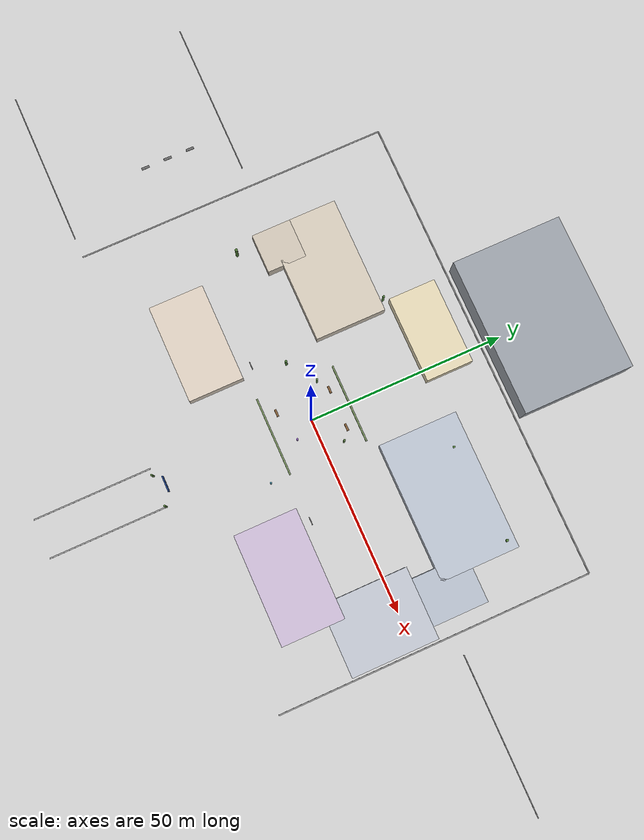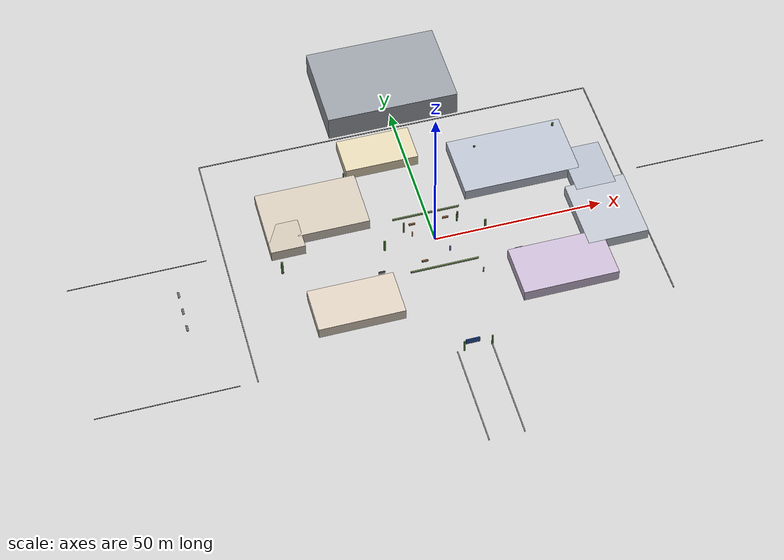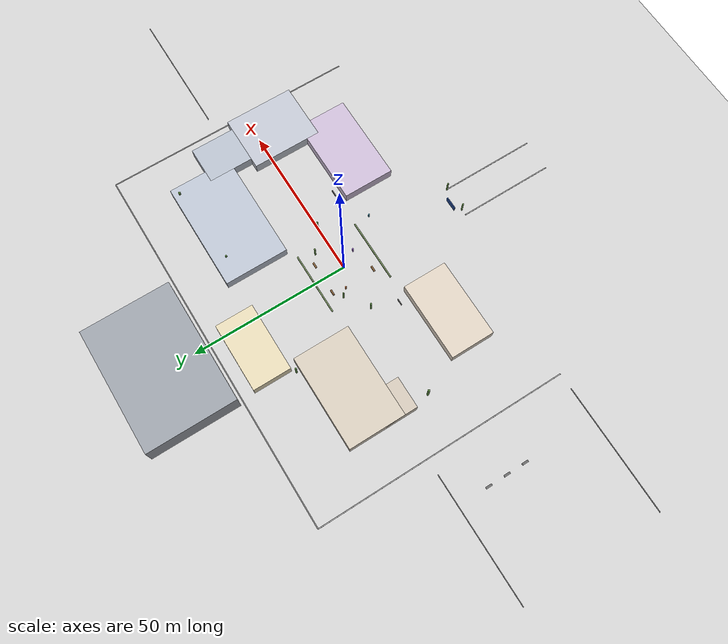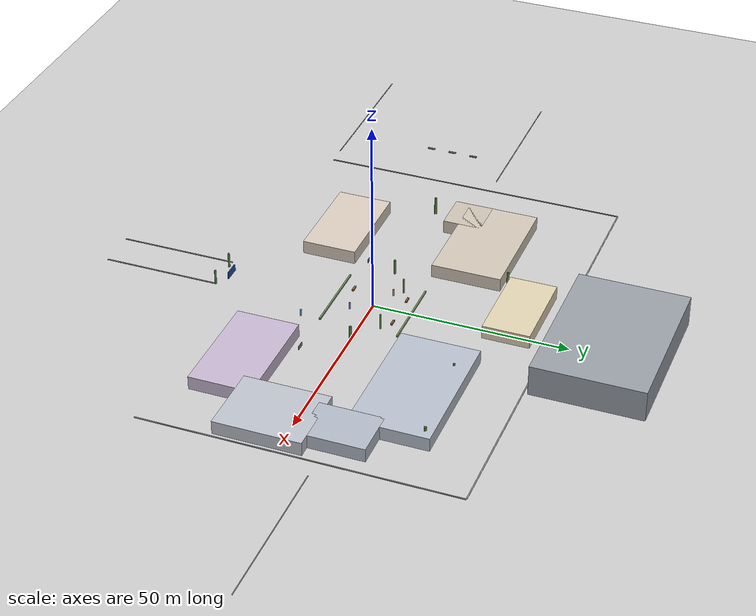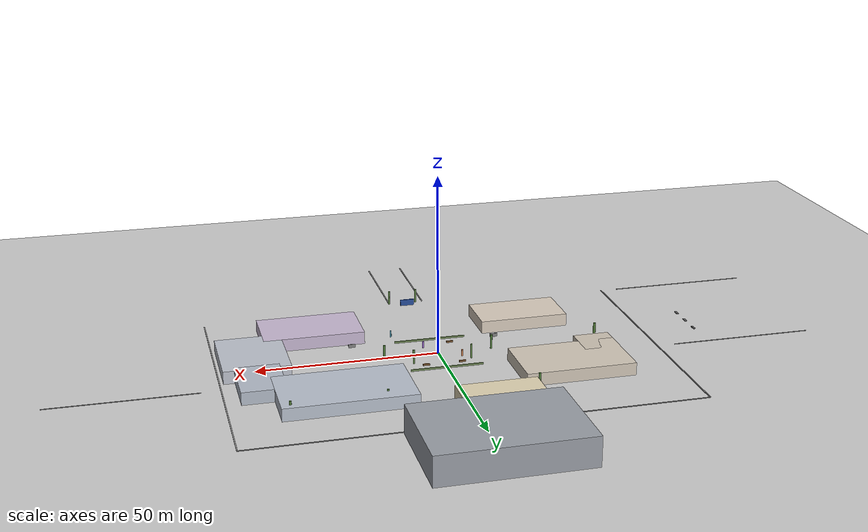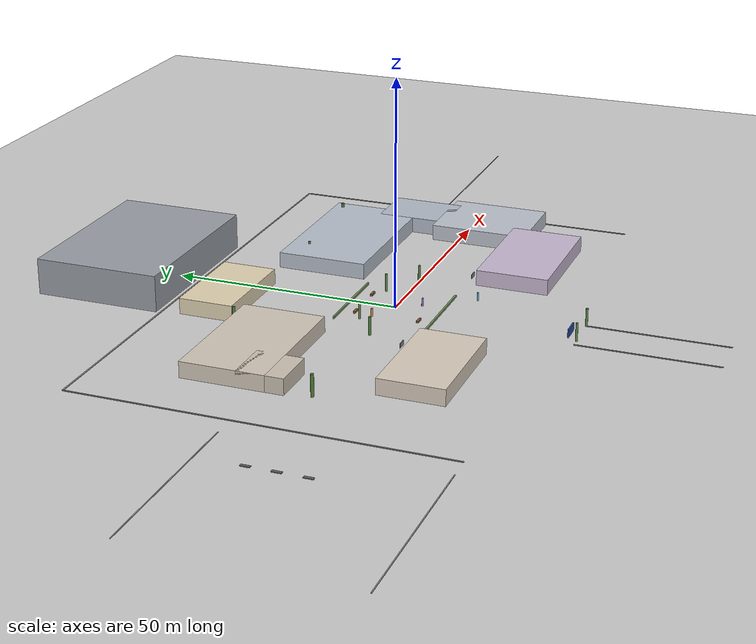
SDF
<?xml version="1.0"?>
<sdf version="1.6">
  <world name="folsom_lake_college">

    <physics type="ode">
      <max_step_size>0.001</max_step_size>
      <real_time_factor>1.0</real_time_factor>
      <real_time_update_rate>1000</real_time_update_rate>
    </physics>

    <include><uri>model://sun</uri></include>
    <include><uri>model://ground_plane</uri></include>

    <!-- South perimeter road / main entrance corridor -->
    <!-- Entry road: 8m wide, runs N-S at x=0 from y=-70 to quad -->
    <!-- Curb east side of entry road -->
    <model name="curb_entry_east">
      <static>true</static>
      <pose>5 -55 0.075 0 0 0</pose>
      <link name="link">
        <collision name="col"><geometry><box><size>0.3 30 0.15</size></box></geometry></collision>
        <visual name="vis">
          <geometry><box><size>0.3 30 0.15</size></box></geometry>
          <material><ambient>0.6 0.6 0.6 1</ambient><diffuse>0.6 0.6 0.6 1</diffuse></material>
        </visual>
      </link>
    </model>

    <!-- Curb west side of entry road -->
    <model name="curb_entry_west">
      <static>true</static>
      <pose>-5 -55 0.075 0 0 0</pose>
      <link name="link">
        <collision name="col"><geometry><box><size>0.3 30 0.15</size></box></geometry></collision>
        <visual name="vis">
          <geometry><box><size>0.3 30 0.15</size></box></geometry>
          <material><ambient>0.6 0.6 0.6 1</ambient><diffuse>0.6 0.6 0.6 1</diffuse></material>
        </visual>
      </link>
    </model>

    <!-- Campus loop road — north section -->
    <model name="road_north_curb_south">
      <static>true</static>
      <pose>0 45 0.075 0 0 0</pose>
      <link name="link">
        <collision name="col"><geometry><box><size>120 0.3 0.15</size></box></geometry></collision>
        <visual name="vis">
          <geometry><box><size>120 0.3 0.15</size></box></geometry>
          <material><ambient>0.55 0.55 0.55 1</ambient><diffuse>0.55 0.55 0.55 1</diffuse></material>
        </visual>
      </link>
    </model>

    <!-- East campus loop road -->
    <model name="road_east_curb">
      <static>true</static>
      <pose>60 5 0.075 0 0 0</pose>
      <link name="link">
        <collision name="col"><geometry><box><size>0.3 80 0.15</size></box></geometry></collision>
        <visual name="vis">
          <geometry><box><size>0.3 80 0.15</size></box></geometry>
          <material><ambient>0.55 0.55 0.55 1</ambient><diffuse>0.55 0.55 0.55 1</diffuse></material>
        </visual>
      </link>
    </model>

    <!-- West campus loop road -->
    <model name="road_west_curb">
      <static>true</static>
      <pose>-60 5 0.075 0 0 0</pose>
      <link name="link">
        <collision name="col"><geometry><box><size>0.3 80 0.15</size></box></geometry></collision>
        <visual name="vis">
          <geometry><box><size>0.3 80 0.15</size></box></geometry>
          <material><ambient>0.55 0.55 0.55 1</ambient><diffuse>0.55 0.55 0.55 1</diffuse></material>
        </visual>
      </link>
    </model>

    <!-- LIBRARY  —  NW of quad, ~30m × 18m -->
    <model name="library">
      <static>true</static>
      <pose>-32 18 1.75 0 0 0</pose>
      <link name="link">
        <collision name="col"><geometry><box><size>30 18 3.5</size></box></geometry></collision>
        <visual name="vis">
          <geometry><box><size>30 18 3.5</size></box></geometry>
          <material><ambient>0.82 0.78 0.72 1</ambient><diffuse>0.82 0.78 0.72 1</diffuse></material>
        </visual>
      </link>
    </model>

    <!-- Library wing (reading room extension) -->
    <model name="library_wing">
      <static>true</static>
      <pose>-42 10 1.75 0 0 0</pose>
      <link name="link">
        <collision name="col"><geometry><box><size>10 10 3.5</size></box></geometry></collision>
        <visual name="vis">
          <geometry><box><size>10 10 3.5</size></box></geometry>
          <material><ambient>0.80 0.76 0.70 1</ambient><diffuse>0.80 0.76 0.70 1</diffuse></material>
        </visual>
      </link>
    </model>

    <!-- SCIENCE & MATH  —  NE, ~35m × 20m -->
    <model name="science_math">
      <static>true</static>
      <pose>30 22 1.75 0 0 0</pose>
      <link name="link">
        <collision name="col"><geometry><box><size>35 20 3.5</size></box></geometry></collision>
        <visual name="vis">
          <geometry><box><size>35 20 3.5</size></box></geometry>
          <material><ambient>0.72 0.75 0.80 1</ambient><diffuse>0.72 0.75 0.80 1</diffuse></material>
        </visual>
      </link>
    </model>

    <!-- Science lab annex -->
    <model name="science_annex">
      <static>true</static>
      <pose>50 12 1.75 0 0 0</pose>
      <link name="link">
        <collision name="col"><geometry><box><size>12 16 3.5</size></box></geometry></collision>
        <visual name="vis">
          <geometry><box><size>12 16 3.5</size></box></geometry>
          <material><ambient>0.70 0.73 0.78 1</ambient><diffuse>0.70 0.73 0.78 1</diffuse></material>
        </visual>
      </link>
    </model>

    <!-- STUDENT SERVICES / ADMIN  —  SW, ~25m × 14m -->
    <model name="student_services">
      <static>true</static>
      <pose>-28 -18 1.75 0 0 0</pose>
      <link name="link">
        <collision name="col"><geometry><box><size>25 14 3.5</size></box></geometry></collision>
        <visual name="vis">
          <geometry><box><size>25 14 3.5</size></box></geometry>
          <material><ambient>0.85 0.80 0.74 1</ambient><diffuse>0.85 0.80 0.74 1</diffuse></material>
        </visual>
      </link>
    </model>

    <!-- ARTS & HUMANITIES  —  SE, ~28m × 16m -->
    <model name="arts_humanities">
      <static>true</static>
      <pose>32 -20 1.75 0 0 0</pose>
      <link name="link">
        <collision name="col"><geometry><box><size>28 16 3.5</size></box></geometry></collision>
        <visual name="vis">
          <geometry><box><size>28 16 3.5</size></box></geometry>
          <material><ambient>0.78 0.72 0.82 1</ambient><diffuse>0.78 0.72 0.82 1</diffuse></material>
        </visual>
      </link>
    </model>

    <!-- GYMNASIUM / PE  —  Far north, ~40m × 28m, taller -->
    <model name="gymnasium">
      <static>true</static>
      <pose>0 60 4.0 0 0 0</pose>
      <link name="link">
        <collision name="col"><geometry><box><size>40 28 8.0</size></box></geometry></collision>
        <visual name="vis">
          <geometry><box><size>40 28 8.0</size></box></geometry>
          <material><ambient>0.60 0.62 0.65 1</ambient><diffuse>0.60 0.62 0.65 1</diffuse></material>
        </visual>
      </link>
    </model>

    <!-- CAFETERIA / STUDENT CENTER  —  North of quad -->
    <model name="cafeteria">
      <static>true</static>
      <pose>-8 35 1.75 0 0 0</pose>
      <link name="link">
        <collision name="col"><geometry><box><size>22 12 3.5</size></box></geometry></collision>
        <visual name="vis">
          <geometry><box><size>22 12 3.5</size></box></geometry>
          <material><ambient>0.88 0.83 0.70 1</ambient><diffuse>0.88 0.83 0.70 1</diffuse></material>
        </visual>
      </link>
    </model>

    <!-- TECHNOLOGY / CTE  —  East mid -->
    <model name="technology_cte">
      <static>true</static>
      <pose>50 -5 1.75 0 0 0</pose>
      <link name="link">
        <collision name="col"><geometry><box><size>18 22 3.5</size></box></geometry></collision>
        <visual name="vis">
          <geometry><box><size>18 22 3.5</size></box></geometry>
          <material><ambient>0.74 0.76 0.80 1</ambient><diffuse>0.74 0.76 0.80 1</diffuse></material>
        </visual>
      </link>
    </model>

    <!-- North planter -->
    <model name="quad_planter_north">
      <static>true</static>
      <pose>0 10 0.25 0 0 0</pose>
      <link name="link">
        <collision name="col"><geometry><box><size>20 0.4 0.5</size></box></geometry></collision>
        <visual name="vis">
          <geometry><box><size>20 0.4 0.5</size></box></geometry>
          <material><ambient>0.45 0.55 0.35 1</ambient><diffuse>0.45 0.55 0.35 1</diffuse></material>
        </visual>
      </link>
    </model>

    <!-- South planter -->
    <model name="quad_planter_south">
      <static>true</static>
      <pose>0 -10 0.25 0 0 0</pose>
      <link name="link">
        <collision name="col"><geometry><box><size>20 0.4 0.5</size></box></geometry></collision>
        <visual name="vis">
          <geometry><box><size>20 0.4 0.5</size></box></geometry>
          <material><ambient>0.45 0.55 0.35 1</ambient><diffuse>0.45 0.55 0.35 1</diffuse></material>
        </visual>
      </link>
    </model>

    <model name="tree_1"><static>true</static><pose>-8 5 2.0 0 0 0</pose>
      <link name="link">
        <collision name="col"><geometry><cylinder><radius>0.25</radius><length>4.0</length></cylinder></geometry></collision>
        <visual name="vis"><geometry><cylinder><radius>0.25</radius><length>4.0</length></cylinder></geometry>
          <material><ambient>0.35 0.5 0.25 1</ambient><diffuse>0.35 0.5 0.25 1</diffuse></material></visual>
      </link>
    </model>

    <model name="tree_2"><static>true</static><pose>8 5 2.0 0 0 0</pose>
      <link name="link">
        <collision name="col"><geometry><cylinder><radius>0.25</radius><length>4.0</length></cylinder></geometry></collision>
        <visual name="vis"><geometry><cylinder><radius>0.25</radius><length>4.0</length></cylinder></geometry>
          <material><ambient>0.35 0.5 0.25 1</ambient><diffuse>0.35 0.5 0.25 1</diffuse></material></visual>
      </link>
    </model>

    <model name="tree_3"><static>true</static><pose>-15 0 2.0 0 0 0</pose>
      <link name="link">
        <collision name="col"><geometry><cylinder><radius>0.3</radius><length>4.0</length></cylinder></geometry></collision>
        <visual name="vis"><geometry><cylinder><radius>0.3</radius><length>4.0</length></cylinder></geometry>
          <material><ambient>0.3 0.48 0.22 1</ambient><diffuse>0.3 0.48 0.22 1</diffuse></material></visual>
      </link>
    </model>

    <model name="tree_4"><static>true</static><pose>15 0 2.0 0 0 0</pose>
      <link name="link">
        <collision name="col"><geometry><cylinder><radius>0.3</radius><length>4.0</length></cylinder></geometry></collision>
        <visual name="vis"><geometry><cylinder><radius>0.3</radius><length>4.0</length></cylinder></geometry>
          <material><ambient>0.3 0.48 0.22 1</ambient><diffuse>0.3 0.48 0.22 1</diffuse></material></visual>
      </link>
    </model>

    <model name="tree_5"><static>true</static><pose>-20 28 2.0 0 0 0</pose>
      <link name="link">
        <collision name="col"><geometry><cylinder><radius>0.28</radius><length>4.0</length></cylinder></geometry></collision>
        <visual name="vis"><geometry><cylinder><radius>0.28</radius><length>4.0</length></cylinder></geometry>
          <material><ambient>0.32 0.50 0.24 1</ambient><diffuse>0.32 0.50 0.24 1</diffuse></material></visual>
      </link>
    </model>

    <model name="tree_6"><static>true</static><pose>20 28 2.0 0 0 0</pose>
      <link name="link">
        <collision name="col"><geometry><cylinder><radius>0.28</radius><length>4.0</length></cylinder></geometry></collision>
        <visual name="vis"><geometry><cylinder><radius>0.28</radius><length>4.0</length></cylinder></geometry>
          <material><ambient>0.32 0.50 0.24 1</ambient><diffuse>0.32 0.50 0.24 1</diffuse></material></visual>
      </link>
    </model>

    <model name="tree_7"><static>true</static><pose>-45 0 2.0 0 0 0</pose>
      <link name="link">
        <collision name="col"><geometry><cylinder><radius>0.35</radius><length>5.0</length></cylinder></geometry></collision>
        <visual name="vis"><geometry><cylinder><radius>0.35</radius><length>5.0</length></cylinder></geometry>
          <material><ambient>0.30 0.46 0.20 1</ambient><diffuse>0.30 0.46 0.20 1</diffuse></material></visual>
      </link>
    </model>

    <model name="tree_8"><static>true</static><pose>45 30 2.0 0 0 0</pose>
      <link name="link">
        <collision name="col"><geometry><cylinder><radius>0.32</radius><length>5.0</length></cylinder></geometry></collision>
        <visual name="vis"><geometry><cylinder><radius>0.32</radius><length>5.0</length></cylinder></geometry>
          <material><ambient>0.30 0.46 0.20 1</ambient><diffuse>0.30 0.46 0.20 1</diffuse></material></visual>
      </link>
    </model>

    <model name="tree_9"><static>true</static><pose>-3 -40 2.0 0 0 0</pose>
      <link name="link">
        <collision name="col"><geometry><cylinder><radius>0.25</radius><length>4.0</length></cylinder></geometry></collision>
        <visual name="vis"><geometry><cylinder><radius>0.25</radius><length>4.0</length></cylinder></geometry>
          <material><ambient>0.35 0.5 0.25 1</ambient><diffuse>0.35 0.5 0.25 1</diffuse></material></visual>
      </link>
    </model>

    <model name="tree_10"><static>true</static><pose>5 -40 2.0 0 0 0</pose>
      <link name="link">
        <collision name="col"><geometry><cylinder><radius>0.25</radius><length>4.0</length></cylinder></geometry></collision>
        <visual name="vis"><geometry><cylinder><radius>0.25</radius><length>4.0</length></cylinder></geometry>
          <material><ambient>0.35 0.5 0.25 1</ambient><diffuse>0.35 0.5 0.25 1</diffuse></material></visual>
      </link>
    </model>

    <!-- ══════════════════════════════════════════════════════
         BENCHES & SIGNS  (small obstacles along pathways)
    ══════════════════════════════════════════════════════════ -->

    <!-- Bench near quad -->
    <model name="bench_1"><static>true</static><pose>-5 7 0.225 0 0 0</pose>
      <link name="link">
        <collision name="col"><geometry><box><size>1.8 0.5 0.45</size></box></geometry></collision>
        <visual name="vis"><geometry><box><size>1.8 0.5 0.45</size></box></geometry>
          <material><ambient>0.5 0.35 0.2 1</ambient><diffuse>0.5 0.35 0.2 1</diffuse></material></visual>
      </link>
    </model>

    <model name="bench_2"><static>true</static><pose>5 7 0.225 0 0 0</pose>
      <link name="link">
        <collision name="col"><geometry><box><size>1.8 0.5 0.45</size></box></geometry></collision>
        <visual name="vis"><geometry><box><size>1.8 0.5 0.45</size></box></geometry>
          <material><ambient>0.5 0.35 0.2 1</ambient><diffuse>0.5 0.35 0.2 1</diffuse></material></visual>
      </link>
    </model>

    <model name="bench_3"><static>true</static><pose>-5 -7 0.225 0 0 0</pose>
      <link name="link">
        <collision name="col"><geometry><box><size>1.8 0.5 0.45</size></box></geometry></collision>
        <visual name="vis"><geometry><box><size>1.8 0.5 0.45</size></box></geometry>
          <material><ambient>0.5 0.35 0.2 1</ambient><diffuse>0.5 0.35 0.2 1</diffuse></material></visual>
      </link>
    </model>

    <!-- Campus sign at main entrance -->
    <model name="campus_sign"><static>true</static><pose>0 -38 0.9 0 0 0</pose>
      <link name="link">
        <collision name="col"><geometry><box><size>4.0 0.3 1.8</size></box></geometry></collision>
        <visual name="vis"><geometry><box><size>4.0 0.3 1.8</size></box></geometry>
          <material><ambient>0.15 0.3 0.6 1</ambient><diffuse>0.15 0.3 0.6 1</diffuse></material></visual>
      </link>
    </model>

    <!-- Bike racks (thin obstacles) -->
    <model name="bike_rack_1"><static>true</static><pose>-18 -8 0.5 0 0 0</pose>
      <link name="link">
        <collision name="col"><geometry><box><size>2.0 0.15 1.0</size></box></geometry></collision>
        <visual name="vis"><geometry><box><size>2.0 0.15 1.0</size></box></geometry>
          <material><ambient>0.5 0.5 0.5 1</ambient><diffuse>0.5 0.5 0.5 1</diffuse></material></visual>
      </link>
    </model>

    <model name="bike_rack_2"><static>true</static><pose>22 -10 0.5 0 0 0</pose>
      <link name="link">
        <collision name="col"><geometry><box><size>2.0 0.15 1.0</size></box></geometry></collision>
        <visual name="vis"><geometry><box><size>2.0 0.15 1.0</size></box></geometry>
          <material><ambient>0.5 0.5 0.5 1</ambient><diffuse>0.5 0.5 0.5 1</diffuse></material></visual>
      </link>
    </model>

    <!-- ══════════════════════════════════════════════════════
         PARKING LOTS  (low curbs only — interior is open for driving)
    ══════════════════════════════════════════════════════════ -->

    <!-- West parking lot boundary -->
    <model name="parking_west_north"><static>true</static><pose>-85 10 0.075 0 0 0</pose>
      <link name="link">
        <collision name="col"><geometry><box><size>40 0.2 0.15</size></box></geometry></collision>
        <visual name="vis"><geometry><box><size>40 0.2 0.15</size></box></geometry>
          <material><ambient>0.55 0.55 0.55 1</ambient><diffuse>0.55 0.55 0.55 1</diffuse></material></visual>
      </link>
    </model>

    <model name="parking_west_south"><static>true</static><pose>-85 -35 0.075 0 0 0</pose>
      <link name="link">
        <collision name="col"><geometry><box><size>40 0.2 0.15</size></box></geometry></collision>
        <visual name="vis"><geometry><box><size>40 0.2 0.15</size></box></geometry>
          <material><ambient>0.55 0.55 0.55 1</ambient><diffuse>0.55 0.55 0.55 1</diffuse></material></visual>
      </link>
    </model>

    <!-- Parking lot divider rows (car stop blocks) -->
    <model name="car_stop_1"><static>true</static><pose>-75 0 0.1 0 0 0</pose>
      <link name="link">
        <collision name="col"><geometry><box><size>0.6 2.0 0.2</size></box></geometry></collision>
        <visual name="vis"><geometry><box><size>0.6 2.0 0.2</size></box></geometry>
          <material><ambient>0.4 0.4 0.4 1</ambient><diffuse>0.4 0.4 0.4 1</diffuse></material></visual>
      </link>
    </model>

    <model name="car_stop_2"><static>true</static><pose>-75 -6 0.1 0 0 0</pose>
      <link name="link">
        <collision name="col"><geometry><box><size>0.6 2.0 0.2</size></box></geometry></collision>
        <visual name="vis"><geometry><box><size>0.6 2.0 0.2</size></box></geometry>
          <material><ambient>0.4 0.4 0.4 1</ambient><diffuse>0.4 0.4 0.4 1</diffuse></material></visual>
      </link>
    </model>

    <model name="car_stop_3"><static>true</static><pose>-75 -12 0.1 0 0 0</pose>
      <link name="link">
        <collision name="col"><geometry><box><size>0.6 2.0 0.2</size></box></geometry></collision>
        <visual name="vis"><geometry><box><size>0.6 2.0 0.2</size></box></geometry>
          <material><ambient>0.4 0.4 0.4 1</ambient><diffuse>0.4 0.4 0.4 1</diffuse></material></visual>
      </link>
    </model>

    <!-- East parking lot boundary -->
    <model name="parking_east_north"><static>true</static><pose>85 10 0.075 0 0 0</pose>
      <link name="link">
        <collision name="col"><geometry><box><size>40 0.2 0.15</size></box></geometry></collision>
        <visual name="vis"><geometry><box><size>40 0.2 0.15</size></box></geometry>
          <material><ambient>0.55 0.55 0.55 1</ambient><diffuse>0.55 0.55 0.55 1</diffuse></material></visual>
      </link>
    </model>

    <!-- ══════════════════════════════════════════════════════
         DYNAMIC OBSTACLES  —  students walking on campus
    ══════════════════════════════════════════════════════════ -->

    <model name="student_1">
      <static>false</static>
      <pose>3 -5 0.9 0 0 0</pose>
      <link name="link">
        <inertial><mass>65</mass><inertia><ixx>8</ixx><iyy>8</iyy><izz>1.5</izz></inertia></inertial>
        <collision name="col"><geometry><cylinder><radius>0.22</radius><length>1.8</length></cylinder></geometry></collision>
        <visual name="vis"><geometry><cylinder><radius>0.22</radius><length>1.8</length></cylinder></geometry>
          <material><ambient>0.6 0.4 0.8 1</ambient><diffuse>0.6 0.4 0.8 1</diffuse></material></visual>
      </link>
    </model>

    <model name="student_2">
      <static>false</static>
      <pose>-6 3 0.9 0 0 0</pose>
      <link name="link">
        <inertial><mass>70</mass><inertia><ixx>9</ixx><iyy>9</iyy><izz>1.8</izz></inertia></inertial>
        <collision name="col"><geometry><cylinder><radius>0.22</radius><length>1.8</length></cylinder></geometry></collision>
        <visual name="vis"><geometry><cylinder><radius>0.22</radius><length>1.8</length></cylinder></geometry>
          <material><ambient>0.8 0.5 0.3 1</ambient><diffuse>0.8 0.5 0.3 1</diffuse></material></visual>
      </link>
    </model>

    <model name="student_3">
      <static>false</static>
      <pose>10 -15 0.9 0 0 0</pose>
      <link name="link">
        <inertial><mass>60</mass><inertia><ixx>7</ixx><iyy>7</iyy><izz>1.2</izz></inertia></inertial>
        <collision name="col"><geometry><cylinder><radius>0.22</radius><length>1.8</length></cylinder></geometry></collision>
        <visual name="vis"><geometry><cylinder><radius>0.22</radius><length>1.8</length></cylinder></geometry>
          <material><ambient>0.3 0.6 0.7 1</ambient><diffuse>0.3 0.6 0.7 1</diffuse></material></visual>
      </link>
    </model>

  </world>
</sdf>
